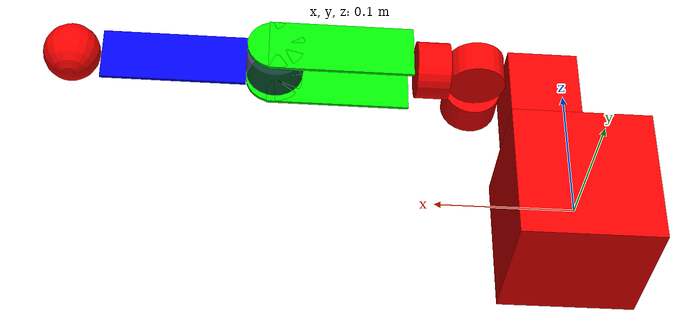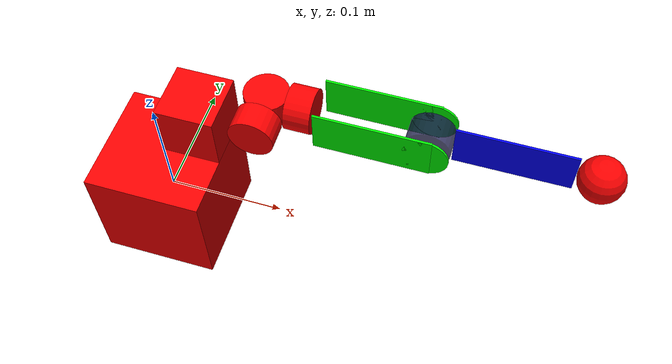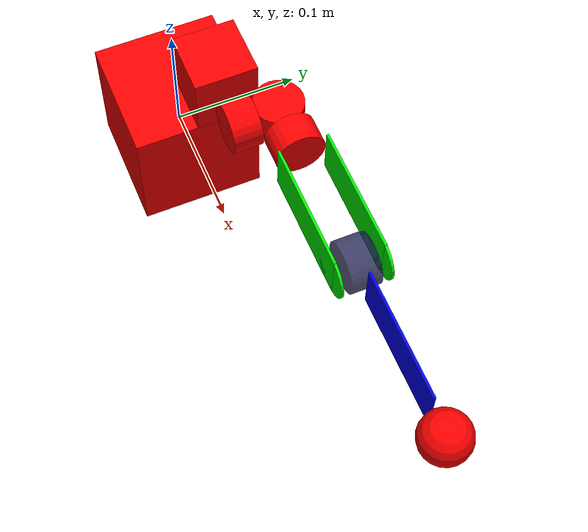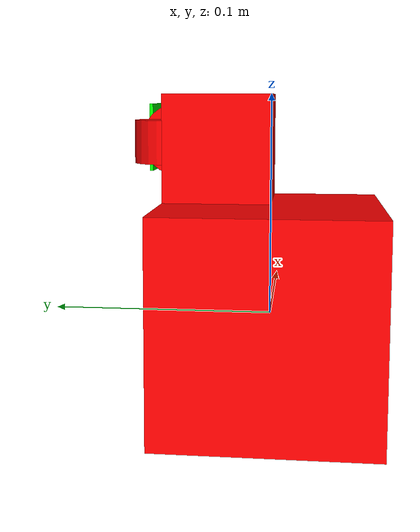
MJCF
<mujoco>
    <actuator>
        <motor gear="10" joint="hinge_1" name="pitch_motor" ctrlrange="-0.5 0.5" ctrllimited="true"/>
        <motor gear="10" joint="hinge_2" name="roll_motor" ctrlrange="-0.5 0.5" ctrllimited="true"/>
        <motor gear="10" joint="hinge_3" name="yaw_motor" ctrlrange="-0.5 0.5" ctrllimited="true"/>
        <motor gear="10" joint="elbow" name="elbow_motor" ctrlrange="-0.5 0.5" ctrllimited="true"/>
    </actuator>
    <asset>
        <material name="blue" rgba="0 0 1 1" />
        <material name="green" rgba="0 1 0 1" />
        <material name="red" rgba="1 0 0 1" />
        <material name="black" rgba=".1 .1 .3 .8" />
    </asset>
    <worldbody>
        <geom type="plane" size="10 10 0.1" pos="0 0 -10" rgba="1 1 1 1" />
        <light diffuse=".5 .5 .5" pos="0 0 3" dir="0 0 -1" />
        <body name="torso" pos="0 0 0">
            <geom type="box" size=".05 .05 .05" pos="0 0 0" euler="0 0 0" material="red"/>
            <geom type="box" size=".025 .025 .025" pos=".025 .025 .075" euler="0 0 0" material="red"/>
            <body name="pitch" pos=".075 .025 .075">
                <geom type="cylinder" size=".0198 .0115" pos="0 0 0" euler="90 0 0" material="red" mass=".065"/>
                <body name="roll" pos="0 .0313 0">
                    <joint name="hinge_1" pos="0 0 0" axis="0 1 0" range="-3.14 3.14"/>
                    <geom type="cylinder" size=".0198 .0115" pos="0 0 0" euler="0 0 90" material="red" mass=".065"/>
                    <body name="yaw" pos=".0313 0 0">
                        <joint name="hinge_2" pos="-.0313 0 0" axis="0 0 1" range="-3.14 3.14"/>
                        <geom type="cylinder" size=".0198 .0115" pos="0 0 0" euler="0 90 0" material="red" mass=".065"/>
                        <body name="link 1" pos=".0198 0 0">
                            <joint name="hinge_3" pos="0 0 0" axis="1 0 0" range="-3.14 3.14"/>
                            <geom type="box" size=".0198 .001 0.05" pos=".045 .0191 0" euler="0 90 0" material="green" mass=".02"/>
                            <geom type="box" size=".0198 .001 0.05" pos=".045 -.0191 0" euler="0 90 0" material="green" mass=".02"/>
                            <geom type="cylinder" size=".0198 .001" pos=".09 .0191 0" euler="90 0 0" material="green"/>
                            <geom type="cylinder" size=".0198 .001" pos=".09 -.0191 0" euler="90 0 0" material="green"/>
                            <geom type="cylinder" size=".0198 .0115" pos=".09 0 0" euler="90 0 0" material="black" mass=".065"/>
                            <body name="link2" pos="0.09 0 0">
                                <joint name="elbow" pos="0 0 0" axis="0 1 0" range="-3.14 3.14"/>
                                <geom type="box" size=".0198 .001 0.05" pos=".0698 0 0" euler="0 90 0" material="blue" mass=".02"/>
                                <body name="endEffector" pos="0.09 0 0">
                                    <geom type="sphere" size=".0198" pos="0.05 0 0" material="red" mass=".050"/>
                                </body>
                            </body>
                        </body>
                    </body>
                </body>
            </body>
        </body>
    </worldbody>
</mujoco>
